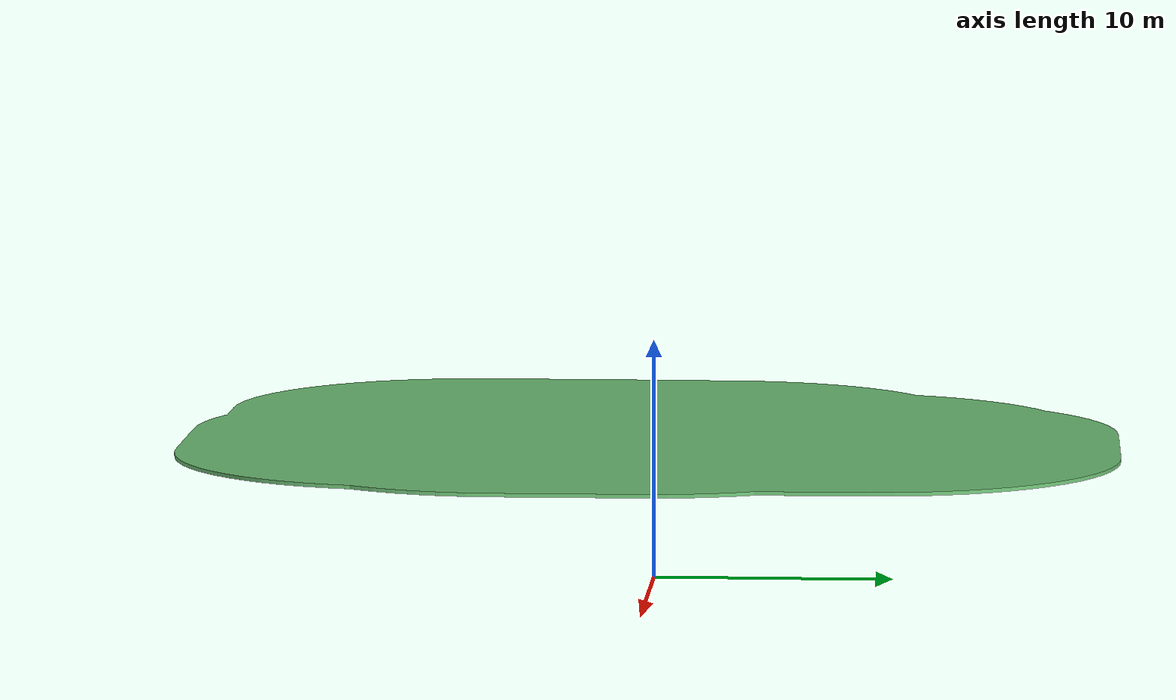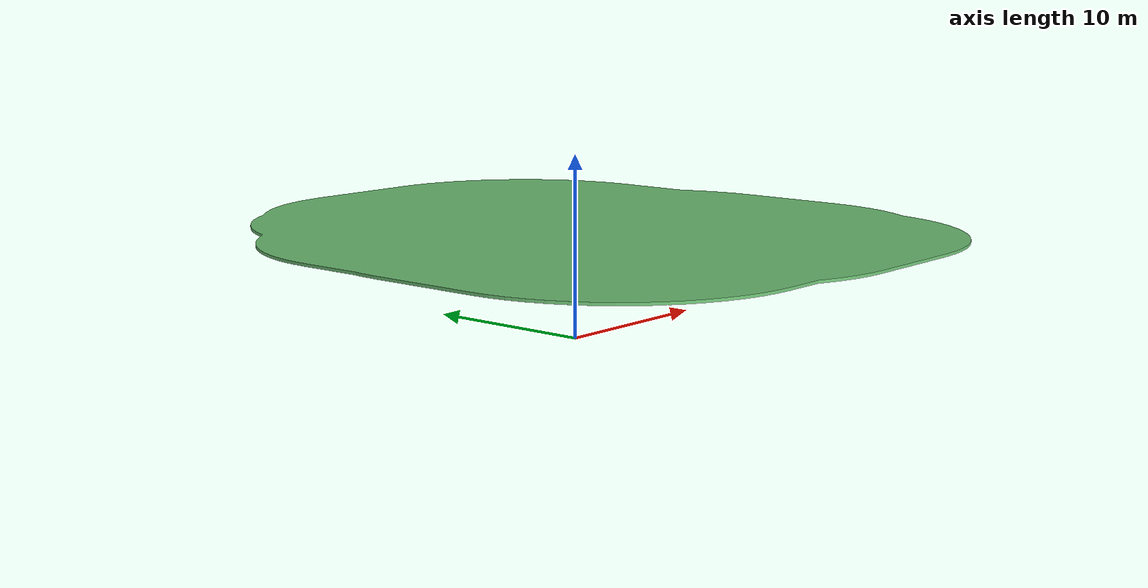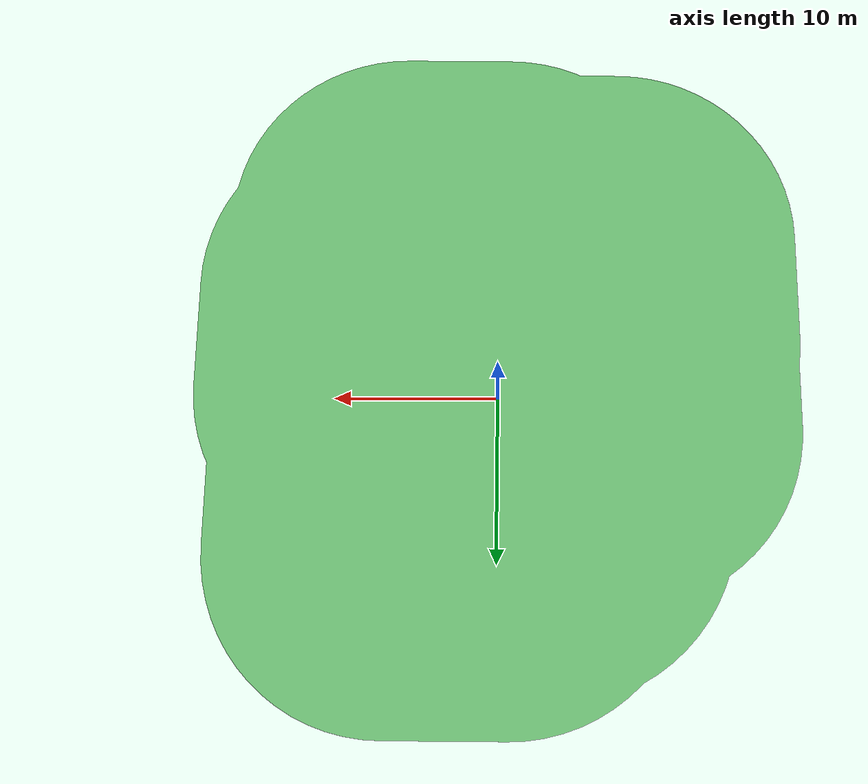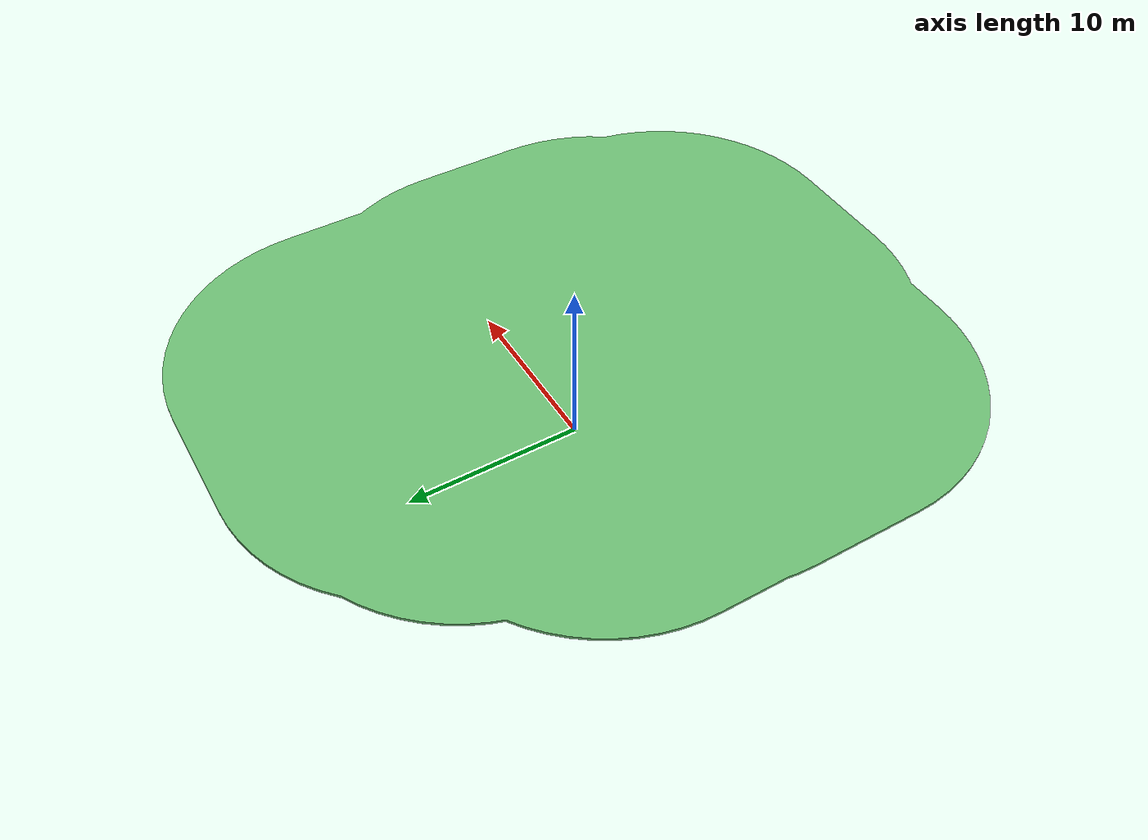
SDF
<?xml version="1.0" ?>
<sdf version="1.6">
  <model name="ceiling_8">
    <pose frame="">0 0 6 0 -0 0</pose>
    <static>1</static>
    <self_collide>0</self_collide>
    <allow_auto_disable>0</allow_auto_disable>
    <link name="mesh">
      <kinematic>0</kinematic>
      <gravity>1</gravity>
      <self_collide>0</self_collide>
      <collision name="collision">
        <geometry>
          <mesh>
            <uri>model://ceiling_8/meshes/NWgnvBJaPz.stl</uri>
            <scale>1 1 1</scale>
          </mesh>
        </geometry>
        <pose frame="">4.56648 3.98176 -0.075 0 -0 0</pose>
        <max_contacts>20</max_contacts>
      </collision>
      <visual name="visual">
        <geometry>
          <mesh>
            <uri>model://ceiling_8/meshes/waNZAjivnx.stl</uri>
            <scale>1 1 1</scale>
          </mesh>
        </geometry>
        <material>
          <ambient>0.435294 0.760784 0.462745 1</ambient>
          <diffuse>0.43529411764705883 0.7607843137254902 0.4627450980392157 1</diffuse>
        </material>
        <pose frame="">4.56648 3.98176 -0.075 0 -0 0</pose>
        <cast_shadows>1</cast_shadows>
        <transparency>0.0</transparency>
      </visual>
      <pose frame="">0 0 0 0 -0 0</pose>
    </link>
  </model>
</sdf>
